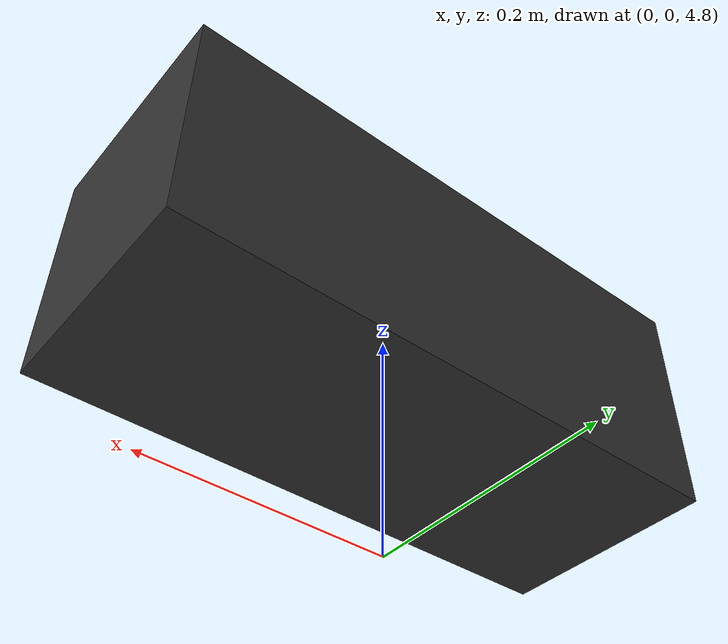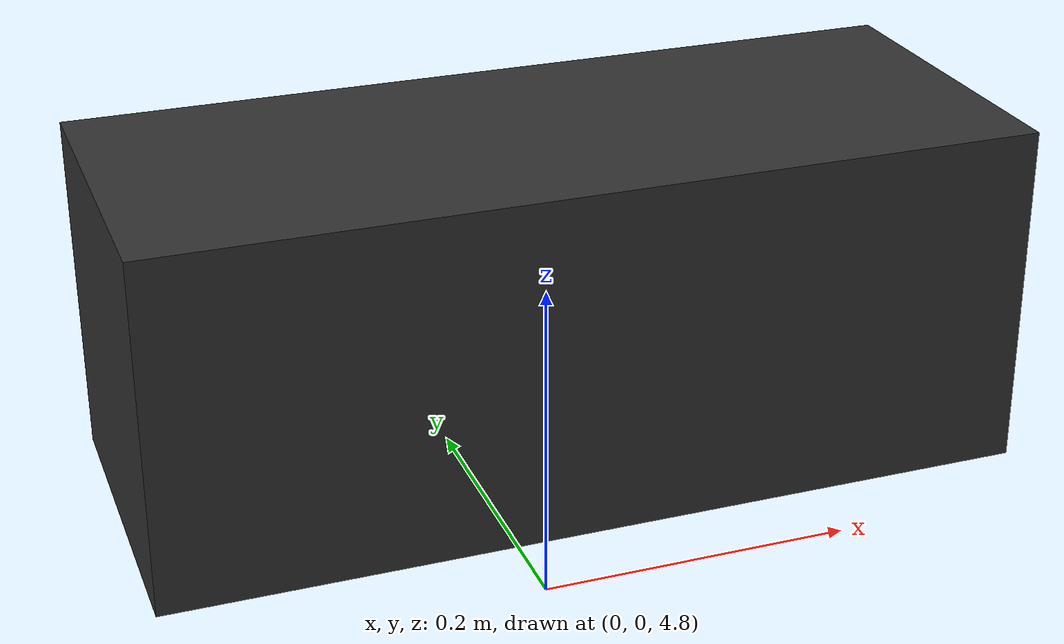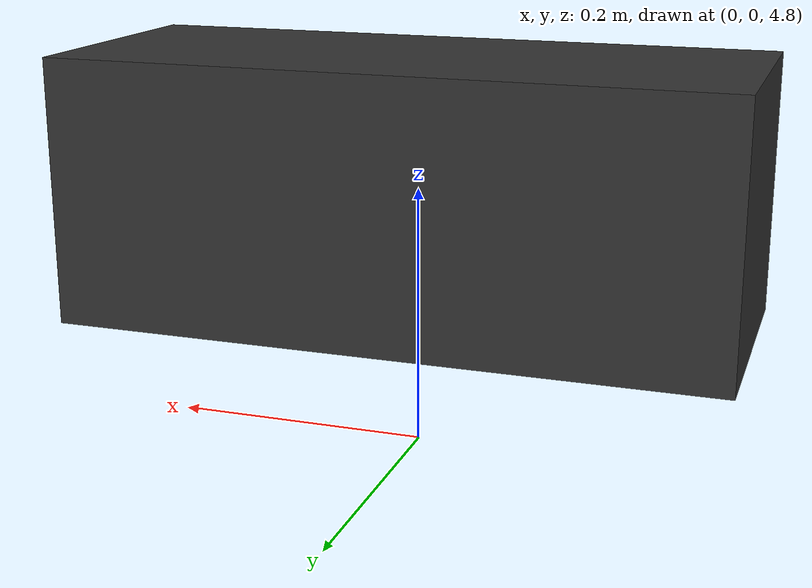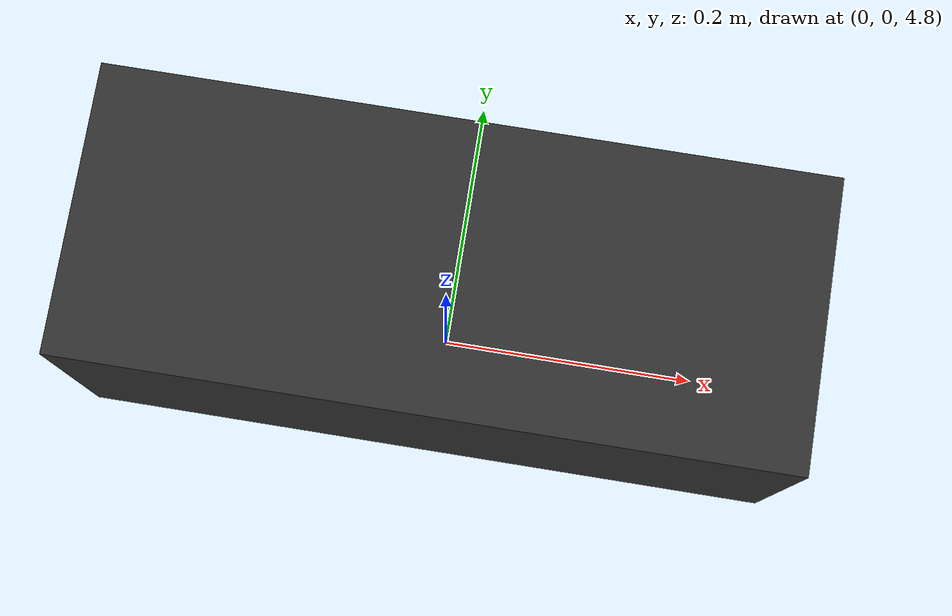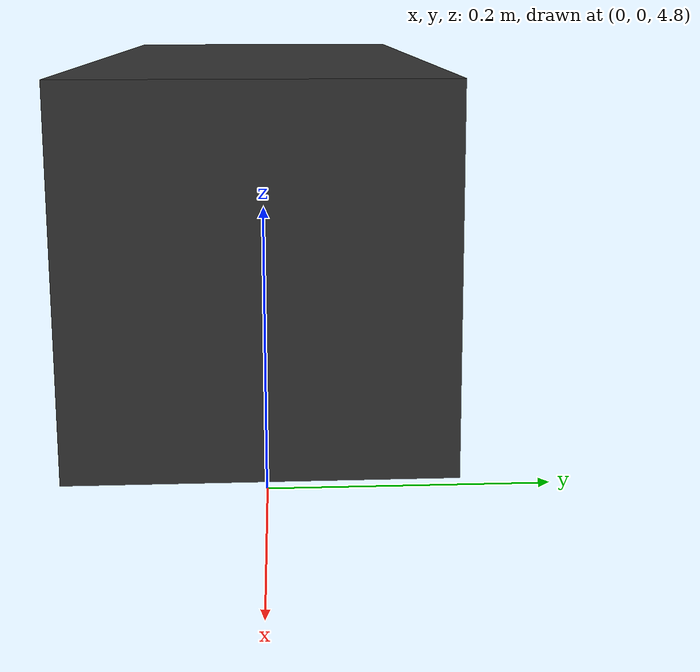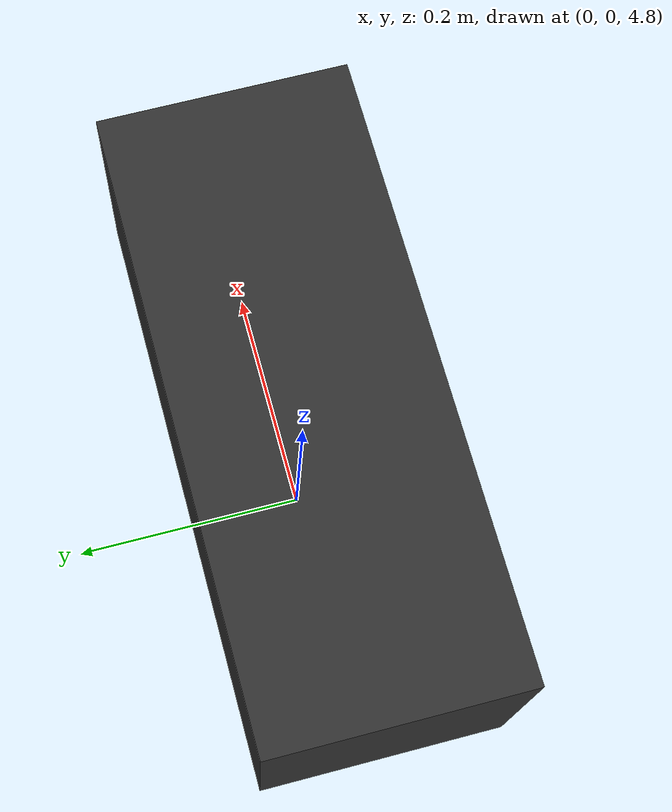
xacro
<?xml version="1.0"?>
<robot xmlns:xacro="http://www.ros.org/wiki/xacro" >

    <joint name="camera_joint" type="fixed">
        <parent link="world"/>
        <child link="camera_link"/>
        <origin xyz="0 0 5" rpy="0 1.57 0"/>
    </joint>
    <link name="world"/>

    <link name="camera_link">
        <inertial>
        <mass value="0.001" />
        <origin rpy="0 0 0" xyz="0.0 0.0 0.0"/>
        <inertia ixx="0.0001" ixy="0" ixz="0" iyy="0.0001" iyz="0" izz="0.0001" />
        </inertial>

        <collision>
        <origin rpy="0 0 0" xyz="0.0 0.0 0.0"/>
        <geometry>
            <box size="0.2 0.2 0.5"/>
        </geometry>
        </collision>

        <visual>
        <origin rpy="0 0 0" xyz="0.0 0.0 0.0"/>
        <geometry>
            <box size="0.2 0.2 0.5"/>
        </geometry>
        <material name="grey">
            <color rgba="0.2 0.2 0.2 1.0"/>
        </material>
        </visual>
    </link>

    <joint name="camera_optical_joint" type="fixed">
        <parent link="camera_link"/>
        <child link="camera_link_optical"/>
        <origin xyz="0 0 0" rpy="0 0 0"/>
    </joint>

    <link name="camera_link_optical"></link>

    <gazebo reference="camera_link">
        <material>Gazebo/Red</material>

        <sensor name="camera" type="camera">
            <pose> 0 0 0 1.57 3.14 3.14 </pose>
            <visualize>true</visualize>
            <update_rate>30</update_rate>
            <camera>
                <horizontal_fov>1.6</horizontal_fov>
                <image>
                    <format>R8G8B8</format>
                    <width>500</width>
                    <height>500</height>
                </image>
                <clip>
                    <near>0.05</near>
                    <far>100.0</far>
                </clip>
            </camera>
            <plugin name="camera_controller" filename="libgazebo_ros_camera.so">
                <frameName>camera_link_optical</frameName>
                <alwaysOn>true</alwaysOn>
                <updateRate>0.0</updateRate>
                <cameraName>camera</cameraName>
                <imageTopicName>image_raw</imageTopicName>
                <cameraInfoTopicName>camera_info</cameraInfoTopicName>
                <hackBaseline>0.07</hackBaseline>
                <distortionK1>0.0</distortionK1>
                <distortionK2>0.0</distortionK2>
                <distortionK3>0.0</distortionK3>
                <distortionT1>0.0</distortionT1>
                <distortionT2>0.0</distortionT2>
            </plugin>
        </sensor>
    </gazebo>

</robot>
